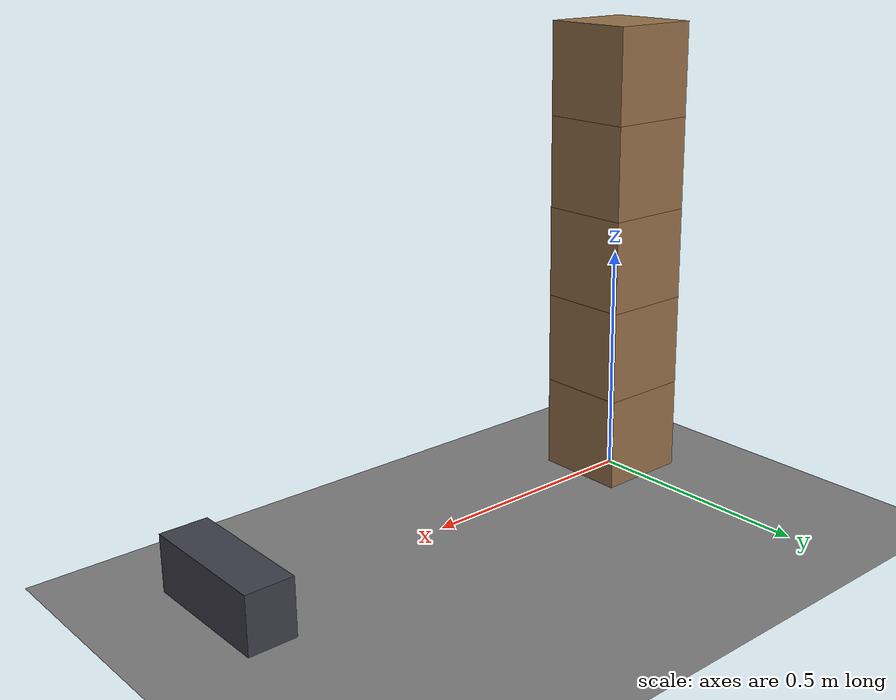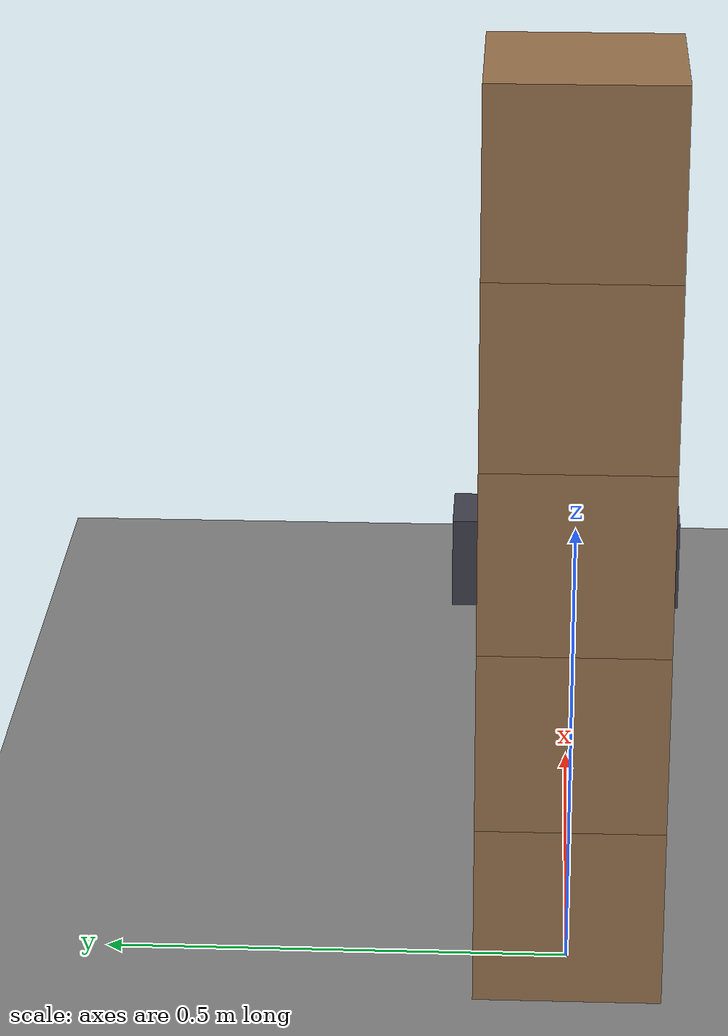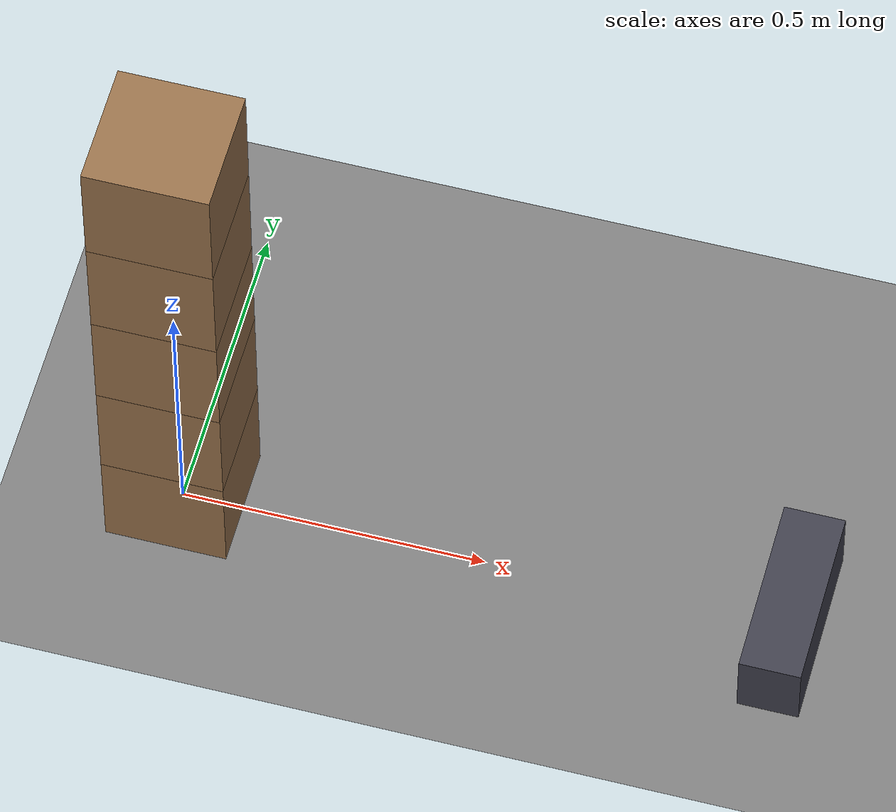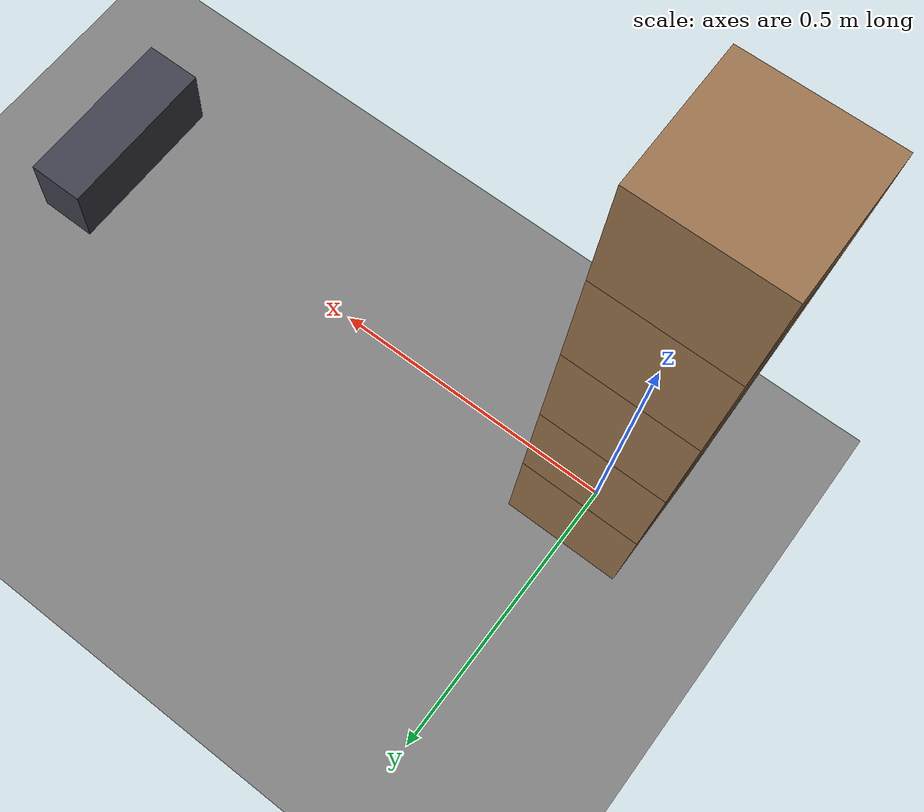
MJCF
<mujoco model="push_the_bottom_block">
  <compiler angle="radian"/>
  <option timestep="0.002"/>
  <worldbody>
    <geom name="floor" type="plane" size="6 6 0.1" friction="0.05 0.005 0.002"/>
    <body name="block1" pos="0 0 0.1">
      <freejoint/>
      <geom name="block1" type="box" pos="0 0 0" size="0.1 0.1 0.1" mass="0.5" friction="0.65 0.005 0.002" solref="0.01 1" rgba="0.6 0.45 0.3 1"/>
    </body>
    <body name="block2" pos="0 0 0.3">
      <freejoint/>
      <geom name="block2" type="box" pos="0 0 0" size="0.1 0.1 0.1" mass="0.5" friction="0.65 0.005 0.002" solref="0.01 1" rgba="0.6 0.45 0.3 1"/>
    </body>
    <body name="block3" pos="0 0 0.5">
      <freejoint/>
      <geom name="block3" type="box" pos="0 0 0" size="0.1 0.1 0.1" mass="0.5" friction="0.65 0.005 0.002" solref="0.01 1" rgba="0.6 0.45 0.3 1"/>
    </body>
    <body name="block4" pos="0 0 0.7">
      <freejoint/>
      <geom name="block4" type="box" pos="0 0 0" size="0.1 0.1 0.1" mass="0.5" friction="0.65 0.005 0.002" solref="0.01 1" rgba="0.6 0.45 0.3 1"/>
    </body>
    <body name="block5" pos="0 0 0.9">
      <freejoint/>
      <geom name="block5" type="box" pos="0 0 0" size="0.1 0.1 0.1" mass="0.5" friction="0.65 0.005 0.002" solref="0.01 1" rgba="0.6 0.45 0.3 1"/>
    </body>
    <body name="pusher" pos="1 0 0.06">
      <freejoint/>
      <geom name="pusher" type="box" pos="0 0 0" size="0.05 0.15 0.06" mass="5" friction="0.05 0.005 0.002" solref="0.01 1" rgba="0.25 0.25 0.3 1"/>
    </body>
  </worldbody>
  <keyframe>
    <key name="start" qpos="0 0 0.1 1 0 0 0 0 0 0.3 1 0 0 0 0 0 0.5 1 0 0 0 0 0 0.7 1 0 0 0 0 0 0.9 1 0 0 0 1 0 0.06 1 0 0 0" qvel="0 0 0 0 0 0 0 0 0 0 0 0 0 0 0 0 0 0 0 0 0 0 0 0 0 0 0 0 0 0 -2 0 0 0 0 0"/>
  </keyframe>
</mujoco>
